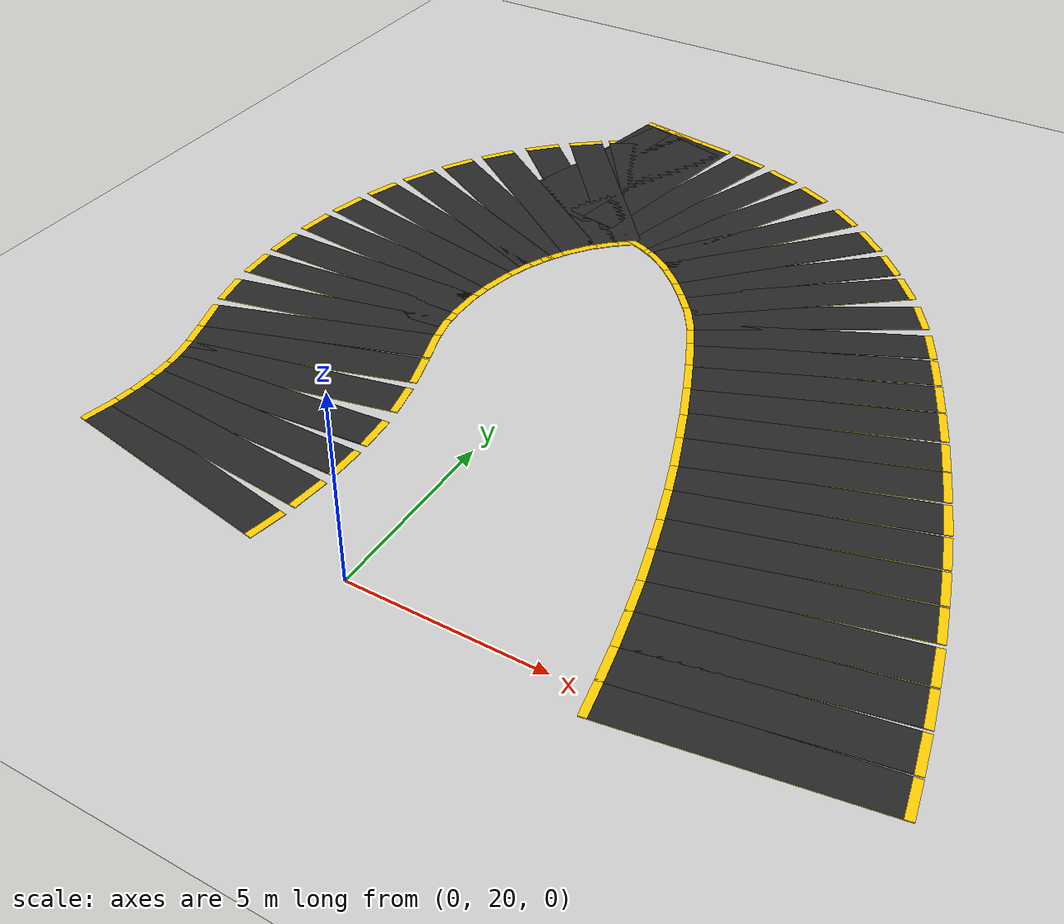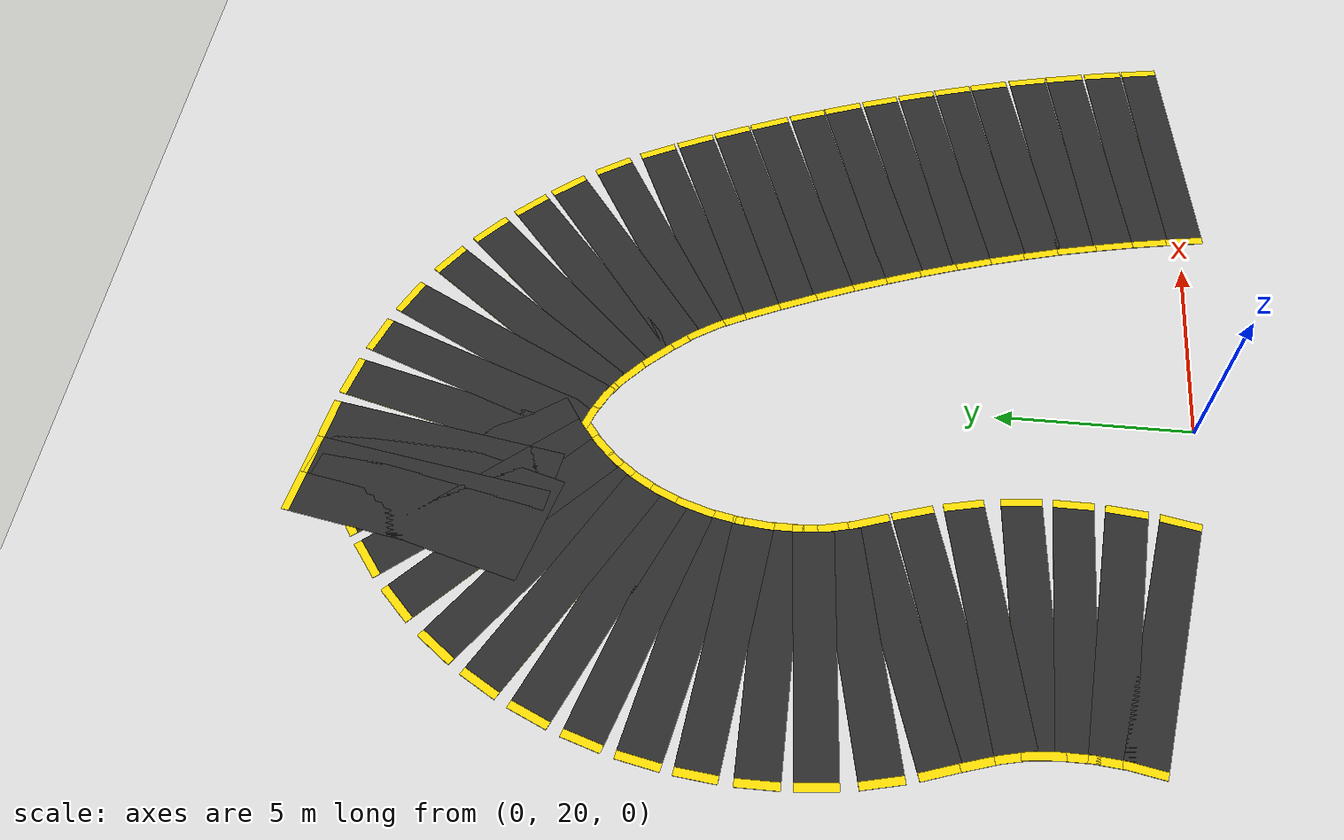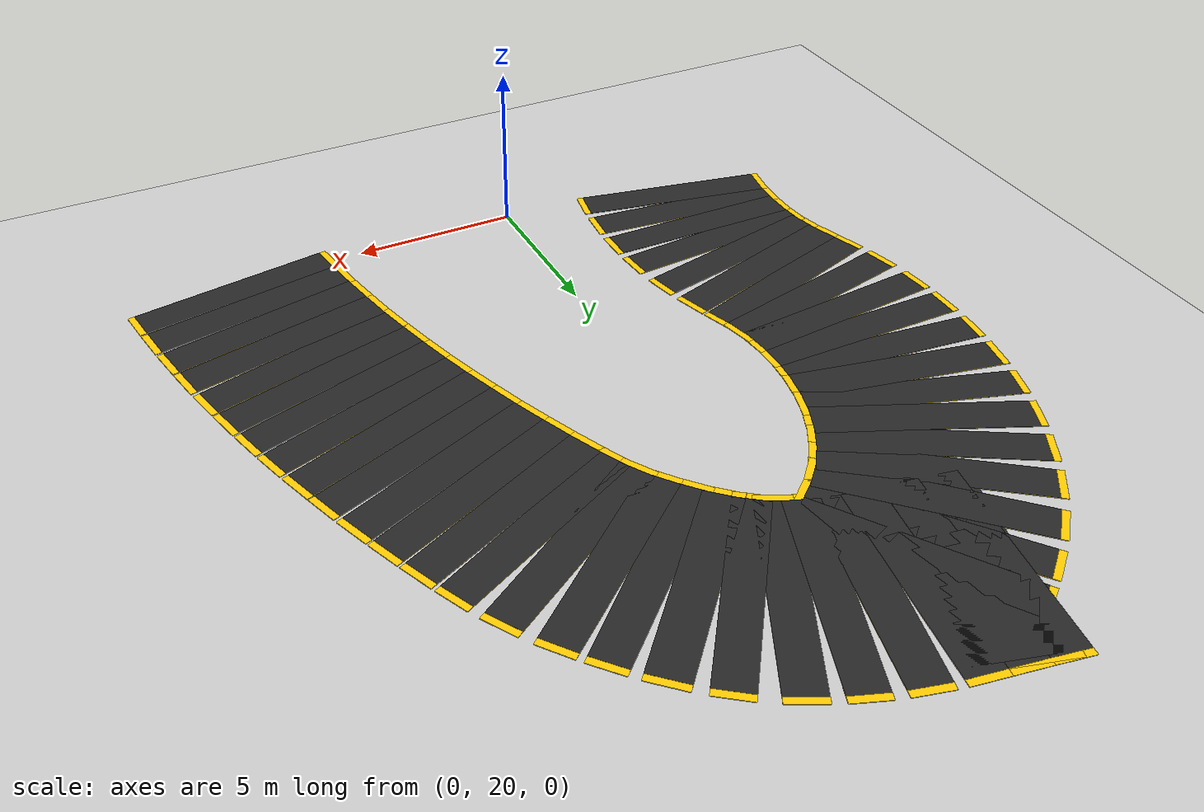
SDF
<sdf version="1.7">
 <world name="custom_road_world">
  <model name="ground_plane">
   <static>true</static>
   <link name="link">
    <collision name="collision">
     <geometry><plane><normal>0 0 1</normal><size>1000 1000</size></plane></geometry>
    </collision>
    <visual name="visual">
     <geometry><plane><normal>0 0 1</normal><size>1000 1000</size></plane></geometry>
     <material>
      <ambient>0.8 0.8 0.8 1</ambient>
      <diffuse>0.8 0.8 0.8 1</diffuse>
      <specular>0.8 0.8 0.8 1</specular>
     </material>
    </visual>
   </link>
  </model>
  <include><uri>https://fuel.ignitionrobotics.org/1.0/openrobotics/models/Sun</uri></include>
  <model name="elliptical_road">
   <static>true</static>
   <link name="seg_0">
    <pose>-4.136 39.092 0.01 0 0 -0.179</pose>
    <visual name="yellow_base_0">
     <pose>0 0 0.001 0 0 0</pose>
     <geometry><box><size>1.060 6.4 0.02</size></box></geometry>
     <material>
      <ambient>1.0 0.8 0.0 1.0</ambient>
      <diffuse>1.0 0.8 0.0 1.0</diffuse>
      <specular>0.1 0.1 0.1 1.0</specular>
     </material>
    </visual>
    <visual name="asphalt_top_0">
     <pose>0 0 0.002 0 0 0</pose>
     <geometry><box><size>1.060 6.0 0.02</size></box></geometry>
     <material>
      <ambient>0.15 0.15 0.15 1.0</ambient>
      <diffuse>0.15 0.15 0.15 1.0</diffuse>
      <specular>0.05 0.05 0.05 1.0</specular>
     </material>
    </visual>
    <visual name="center_line_0">
     <pose>0 0 0.003 0 0 0</pose>
     <geometry><box><size>0.530 0.15 0.001</size></box></geometry>
     <material><ambient>0.9 0.9 0.9 1</ambient><diffuse>0.9 0.9 0.9 1</diffuse></material>
    </visual>
   </link>
   <link name="seg_1">
    <pose>-3.084 38.909 0.01 0 0 -0.166</pose>
    <visual name="yellow_base_1">
     <pose>0 0 0.001 0 0 0</pose>
     <geometry><box><size>1.077 6.4 0.02</size></box></geometry>
     <material>
      <ambient>1.0 0.8 0.0 1.0</ambient>
      <diffuse>1.0 0.8 0.0 1.0</diffuse>
      <specular>0.1 0.1 0.1 1.0</specular>
     </material>
    </visual>
    <visual name="asphalt_top_1">
     <pose>0 0 0.002 0 0 0</pose>
     <geometry><box><size>1.077 6.0 0.02</size></box></geometry>
     <material>
      <ambient>0.15 0.15 0.15 1.0</ambient>
      <diffuse>0.15 0.15 0.15 1.0</diffuse>
      <specular>0.05 0.05 0.05 1.0</specular>
     </material>
    </visual>
    <visual name="center_line_1">
     <pose>0 0 0.003 0 0 0</pose>
     <geometry><box><size>0.538 0.15 0.001</size></box></geometry>
     <material><ambient>0.9 0.9 0.9 1</ambient><diffuse>0.9 0.9 0.9 1</diffuse></material>
    </visual>
   </link>
   <link name="seg_2">
    <pose>-2.030 38.733 0.01 0 0 -0.165</pose>
    <visual name="yellow_base_2">
     <pose>0 0 0.001 0 0 0</pose>
     <geometry><box><size>1.059 6.4 0.02</size></box></geometry>
     <material>
      <ambient>1.0 0.8 0.0 1.0</ambient>
      <diffuse>1.0 0.8 0.0 1.0</diffuse>
      <specular>0.1 0.1 0.1 1.0</specular>
     </material>
    </visual>
    <visual name="asphalt_top_2">
     <pose>0 0 0.002 0 0 0</pose>
     <geometry><box><size>1.059 6.0 0.02</size></box></geometry>
     <material>
      <ambient>0.15 0.15 0.15 1.0</ambient>
      <diffuse>0.15 0.15 0.15 1.0</diffuse>
      <specular>0.05 0.05 0.05 1.0</specular>
     </material>
    </visual>
    <visual name="center_line_2">
     <pose>0 0 0.003 0 0 0</pose>
     <geometry><box><size>0.529 0.15 0.001</size></box></geometry>
     <material><ambient>0.9 0.9 0.9 1</ambient><diffuse>0.9 0.9 0.9 1</diffuse></material>
    </visual>
   </link>
   <link name="seg_3">
    <pose>-0.987 38.514 0.01 0 0 -0.247</pose>
    <visual name="yellow_base_3">
     <pose>0 0 0.001 0 0 0</pose>
     <geometry><box><size>1.075 6.4 0.02</size></box></geometry>
     <material>
      <ambient>1.0 0.8 0.0 1.0</ambient>
      <diffuse>1.0 0.8 0.0 1.0</diffuse>
      <specular>0.1 0.1 0.1 1.0</specular>
     </material>
    </visual>
    <visual name="asphalt_top_3">
     <pose>0 0 0.002 0 0 0</pose>
     <geometry><box><size>1.075 6.0 0.02</size></box></geometry>
     <material>
      <ambient>0.15 0.15 0.15 1.0</ambient>
      <diffuse>0.15 0.15 0.15 1.0</diffuse>
      <specular>0.05 0.05 0.05 1.0</specular>
     </material>
    </visual>
    <visual name="center_line_3">
     <pose>0 0 0.003 0 0 0</pose>
     <geometry><box><size>0.537 0.15 0.001</size></box></geometry>
     <material><ambient>0.9 0.9 0.9 1</ambient><diffuse>0.9 0.9 0.9 1</diffuse></material>
    </visual>
   </link>
   <link name="seg_4">
    <pose>0.007 38.207 0.01 0 0 -0.355</pose>
    <visual name="yellow_base_4">
     <pose>0 0 0.001 0 0 0</pose>
     <geometry><box><size>1.010 6.4 0.02</size></box></geometry>
     <material>
      <ambient>1.0 0.8 0.0 1.0</ambient>
      <diffuse>1.0 0.8 0.0 1.0</diffuse>
      <specular>0.1 0.1 0.1 1.0</specular>
     </material>
    </visual>
    <visual name="asphalt_top_4">
     <pose>0 0 0.002 0 0 0</pose>
     <geometry><box><size>1.010 6.0 0.02</size></box></geometry>
     <material>
      <ambient>0.15 0.15 0.15 1.0</ambient>
      <diffuse>0.15 0.15 0.15 1.0</diffuse>
      <specular>0.05 0.05 0.05 1.0</specular>
     </material>
    </visual>
    <visual name="center_line_4">
     <pose>0 0 0.003 0 0 0</pose>
     <geometry><box><size>0.505 0.15 0.001</size></box></geometry>
     <material><ambient>0.9 0.9 0.9 1</ambient><diffuse>0.9 0.9 0.9 1</diffuse></material>
    </visual>
   </link>
   <link name="seg_5">
    <pose>0.940 37.802 0.01 0 0 -0.464</pose>
    <visual name="yellow_base_5">
     <pose>0 0 0.001 0 0 0</pose>
     <geometry><box><size>1.027 6.4 0.02</size></box></geometry>
     <material>
      <ambient>1.0 0.8 0.0 1.0</ambient>
      <diffuse>1.0 0.8 0.0 1.0</diffuse>
      <specular>0.1 0.1 0.1 1.0</specular>
     </material>
    </visual>
    <visual name="asphalt_top_5">
     <pose>0 0 0.002 0 0 0</pose>
     <geometry><box><size>1.027 6.0 0.02</size></box></geometry>
     <material>
      <ambient>0.15 0.15 0.15 1.0</ambient>
      <diffuse>0.15 0.15 0.15 1.0</diffuse>
      <specular>0.05 0.05 0.05 1.0</specular>
     </material>
    </visual>
    <visual name="center_line_5">
     <pose>0 0 0.003 0 0 0</pose>
     <geometry><box><size>0.514 0.15 0.001</size></box></geometry>
     <material><ambient>0.9 0.9 0.9 1</ambient><diffuse>0.9 0.9 0.9 1</diffuse></material>
    </visual>
   </link>
   <link name="seg_6">
    <pose>1.809 37.273 0.01 0 0 -0.630</pose>
    <visual name="yellow_base_6">
     <pose>0 0 0.001 0 0 0</pose>
     <geometry><box><size>1.013 6.4 0.02</size></box></geometry>
     <material>
      <ambient>1.0 0.8 0.0 1.0</ambient>
      <diffuse>1.0 0.8 0.0 1.0</diffuse>
      <specular>0.1 0.1 0.1 1.0</specular>
     </material>
    </visual>
    <visual name="asphalt_top_6">
     <pose>0 0 0.002 0 0 0</pose>
     <geometry><box><size>1.013 6.0 0.02</size></box></geometry>
     <material>
      <ambient>0.15 0.15 0.15 1.0</ambient>
      <diffuse>0.15 0.15 0.15 1.0</diffuse>
      <specular>0.05 0.05 0.05 1.0</specular>
     </material>
    </visual>
    <visual name="center_line_6">
     <pose>0 0 0.003 0 0 0</pose>
     <geometry><box><size>0.507 0.15 0.001</size></box></geometry>
     <material><ambient>0.9 0.9 0.9 1</ambient><diffuse>0.9 0.9 0.9 1</diffuse></material>
    </visual>
   </link>
   <link name="seg_7">
    <pose>2.620 36.603 0.01 0 0 -0.748</pose>
    <visual name="yellow_base_7">
     <pose>0 0 0.001 0 0 0</pose>
     <geometry><box><size>1.094 6.4 0.02</size></box></geometry>
     <material>
      <ambient>1.0 0.8 0.0 1.0</ambient>
      <diffuse>1.0 0.8 0.0 1.0</diffuse>
      <specular>0.1 0.1 0.1 1.0</specular>
     </material>
    </visual>
    <visual name="asphalt_top_7">
     <pose>0 0 0.002 0 0 0</pose>
     <geometry><box><size>1.094 6.0 0.02</size></box></geometry>
     <material>
      <ambient>0.15 0.15 0.15 1.0</ambient>
      <diffuse>0.15 0.15 0.15 1.0</diffuse>
      <specular>0.05 0.05 0.05 1.0</specular>
     </material>
    </visual>
    <visual name="center_line_7">
     <pose>0 0 0.003 0 0 0</pose>
     <geometry><box><size>0.547 0.15 0.001</size></box></geometry>
     <material><ambient>0.9 0.9 0.9 1</ambient><diffuse>0.9 0.9 0.9 1</diffuse></material>
    </visual>
   </link>
   <link name="seg_8">
    <pose>3.358 35.854 0.01 0 0 -0.841</pose>
    <visual name="yellow_base_8">
     <pose>0 0 0.001 0 0 0</pose>
     <geometry><box><size>1.011 6.4 0.02</size></box></geometry>
     <material>
      <ambient>1.0 0.8 0.0 1.0</ambient>
      <diffuse>1.0 0.8 0.0 1.0</diffuse>
      <specular>0.1 0.1 0.1 1.0</specular>
     </material>
    </visual>
    <visual name="asphalt_top_8">
     <pose>0 0 0.002 0 0 0</pose>
     <geometry><box><size>1.011 6.0 0.02</size></box></geometry>
     <material>
      <ambient>0.15 0.15 0.15 1.0</ambient>
      <diffuse>0.15 0.15 0.15 1.0</diffuse>
      <specular>0.05 0.05 0.05 1.0</specular>
     </material>
    </visual>
    <visual name="center_line_8">
     <pose>0 0 0.003 0 0 0</pose>
     <geometry><box><size>0.506 0.15 0.001</size></box></geometry>
     <material><ambient>0.9 0.9 0.9 1</ambient><diffuse>0.9 0.9 0.9 1</diffuse></material>
    </visual>
   </link>
   <link name="seg_9">
    <pose>4.017 35.072 0.01 0 0 -0.900</pose>
    <visual name="yellow_base_9">
     <pose>0 0 0.001 0 0 0</pose>
     <geometry><box><size>1.035 6.4 0.02</size></box></geometry>
     <material>
      <ambient>1.0 0.8 0.0 1.0</ambient>
      <diffuse>1.0 0.8 0.0 1.0</diffuse>
      <specular>0.1 0.1 0.1 1.0</specular>
     </material>
    </visual>
    <visual name="asphalt_top_9">
     <pose>0 0 0.002 0 0 0</pose>
     <geometry><box><size>1.035 6.0 0.02</size></box></geometry>
     <material>
      <ambient>0.15 0.15 0.15 1.0</ambient>
      <diffuse>0.15 0.15 0.15 1.0</diffuse>
      <specular>0.05 0.05 0.05 1.0</specular>
     </material>
    </visual>
    <visual name="center_line_9">
     <pose>0 0 0.003 0 0 0</pose>
     <geometry><box><size>0.517 0.15 0.001</size></box></geometry>
     <material><ambient>0.9 0.9 0.9 1</ambient><diffuse>0.9 0.9 0.9 1</diffuse></material>
    </visual>
   </link>
   <link name="seg_10">
    <pose>4.613 34.221 0.01 0 0 -1.019</pose>
    <visual name="yellow_base_10">
     <pose>0 0 0.001 0 0 0</pose>
     <geometry><box><size>1.047 6.4 0.02</size></box></geometry>
     <material>
      <ambient>1.0 0.8 0.0 1.0</ambient>
      <diffuse>1.0 0.8 0.0 1.0</diffuse>
      <specular>0.1 0.1 0.1 1.0</specular>
     </material>
    </visual>
    <visual name="asphalt_top_10">
     <pose>0 0 0.002 0 0 0</pose>
     <geometry><box><size>1.047 6.0 0.02</size></box></geometry>
     <material>
      <ambient>0.15 0.15 0.15 1.0</ambient>
      <diffuse>0.15 0.15 0.15 1.0</diffuse>
      <specular>0.05 0.05 0.05 1.0</specular>
     </material>
    </visual>
    <visual name="center_line_10">
     <pose>0 0 0.003 0 0 0</pose>
     <geometry><box><size>0.523 0.15 0.001</size></box></geometry>
     <material><ambient>0.9 0.9 0.9 1</ambient><diffuse>0.9 0.9 0.9 1</diffuse></material>
    </visual>
   </link>
   <link name="seg_11">
    <pose>5.107 33.319 0.01 0 0 -1.123</pose>
    <visual name="yellow_base_11">
     <pose>0 0 0.001 0 0 0</pose>
     <geometry><box><size>1.015 6.4 0.02</size></box></geometry>
     <material>
      <ambient>1.0 0.8 0.0 1.0</ambient>
      <diffuse>1.0 0.8 0.0 1.0</diffuse>
      <specular>0.1 0.1 0.1 1.0</specular>
     </material>
    </visual>
    <visual name="asphalt_top_11">
     <pose>0 0 0.002 0 0 0</pose>
     <geometry><box><size>1.015 6.0 0.02</size></box></geometry>
     <material>
      <ambient>0.15 0.15 0.15 1.0</ambient>
      <diffuse>0.15 0.15 0.15 1.0</diffuse>
      <specular>0.05 0.05 0.05 1.0</specular>
     </material>
    </visual>
    <visual name="center_line_11">
     <pose>0 0 0.003 0 0 0</pose>
     <geometry><box><size>0.507 0.15 0.001</size></box></geometry>
     <material><ambient>0.9 0.9 0.9 1</ambient><diffuse>0.9 0.9 0.9 1</diffuse></material>
    </visual>
   </link>
   <link name="seg_12">
    <pose>5.535 32.388 0.01 0 0 -1.155</pose>
    <visual name="yellow_base_12">
     <pose>0 0 0.001 0 0 0</pose>
     <geometry><box><size>1.035 6.4 0.02</size></box></geometry>
     <material>
      <ambient>1.0 0.8 0.0 1.0</ambient>
      <diffuse>1.0 0.8 0.0 1.0</diffuse>
      <specular>0.1 0.1 0.1 1.0</specular>
     </material>
    </visual>
    <visual name="asphalt_top_12">
     <pose>0 0 0.002 0 0 0</pose>
     <geometry><box><size>1.035 6.0 0.02</size></box></geometry>
     <material>
      <ambient>0.15 0.15 0.15 1.0</ambient>
      <diffuse>0.15 0.15 0.15 1.0</diffuse>
      <specular>0.05 0.05 0.05 1.0</specular>
     </material>
    </visual>
    <visual name="center_line_12">
     <pose>0 0 0.003 0 0 0</pose>
     <geometry><box><size>0.518 0.15 0.001</size></box></geometry>
     <material><ambient>0.9 0.9 0.9 1</ambient><diffuse>0.9 0.9 0.9 1</diffuse></material>
    </visual>
   </link>
   <link name="seg_13">
    <pose>5.941 31.437 0.01 0 0 -1.179</pose>
    <visual name="yellow_base_13">
     <pose>0 0 0.001 0 0 0</pose>
     <geometry><box><size>1.031 6.4 0.02</size></box></geometry>
     <material>
      <ambient>1.0 0.8 0.0 1.0</ambient>
      <diffuse>1.0 0.8 0.0 1.0</diffuse>
      <specular>0.1 0.1 0.1 1.0</specular>
     </material>
    </visual>
    <visual name="asphalt_top_13">
     <pose>0 0 0.002 0 0 0</pose>
     <geometry><box><size>1.031 6.0 0.02</size></box></geometry>
     <material>
      <ambient>0.15 0.15 0.15 1.0</ambient>
      <diffuse>0.15 0.15 0.15 1.0</diffuse>
      <specular>0.05 0.05 0.05 1.0</specular>
     </material>
    </visual>
    <visual name="center_line_13">
     <pose>0 0 0.003 0 0 0</pose>
     <geometry><box><size>0.516 0.15 0.001</size></box></geometry>
     <material><ambient>0.9 0.9 0.9 1</ambient><diffuse>0.9 0.9 0.9 1</diffuse></material>
    </visual>
   </link>
   <link name="seg_14">
    <pose>6.339 30.451 0.01 0 0 -1.196</pose>
    <visual name="yellow_base_14">
     <pose>0 0 0.001 0 0 0</pose>
     <geometry><box><size>1.096 6.4 0.02</size></box></geometry>
     <material>
      <ambient>1.0 0.8 0.0 1.0</ambient>
      <diffuse>1.0 0.8 0.0 1.0</diffuse>
      <specular>0.1 0.1 0.1 1.0</specular>
     </material>
    </visual>
    <visual name="asphalt_top_14">
     <pose>0 0 0.002 0 0 0</pose>
     <geometry><box><size>1.096 6.0 0.02</size></box></geometry>
     <material>
      <ambient>0.15 0.15 0.15 1.0</ambient>
      <diffuse>0.15 0.15 0.15 1.0</diffuse>
      <specular>0.05 0.05 0.05 1.0</specular>
     </material>
    </visual>
    <visual name="center_line_14">
     <pose>0 0 0.003 0 0 0</pose>
     <geometry><box><size>0.548 0.15 0.001</size></box></geometry>
     <material><ambient>0.9 0.9 0.9 1</ambient><diffuse>0.9 0.9 0.9 1</diffuse></material>
    </visual>
   </link>
   <link name="seg_15">
    <pose>6.711 29.463 0.01 0 0 -1.226</pose>
    <visual name="yellow_base_15">
     <pose>0 0 0.001 0 0 0</pose>
     <geometry><box><size>1.014 6.4 0.02</size></box></geometry>
     <material>
      <ambient>1.0 0.8 0.0 1.0</ambient>
      <diffuse>1.0 0.8 0.0 1.0</diffuse>
      <specular>0.1 0.1 0.1 1.0</specular>
     </material>
    </visual>
    <visual name="asphalt_top_15">
     <pose>0 0 0.002 0 0 0</pose>
     <geometry><box><size>1.014 6.0 0.02</size></box></geometry>
     <material>
      <ambient>0.15 0.15 0.15 1.0</ambient>
      <diffuse>0.15 0.15 0.15 1.0</diffuse>
      <specular>0.05 0.05 0.05 1.0</specular>
     </material>
    </visual>
    <visual name="center_line_15">
     <pose>0 0 0.003 0 0 0</pose>
     <geometry><box><size>0.507 0.15 0.001</size></box></geometry>
     <material><ambient>0.9 0.9 0.9 1</ambient><diffuse>0.9 0.9 0.9 1</diffuse></material>
    </visual>
   </link>
   <link name="seg_16">
    <pose>7.058 28.483 0.01 0 0 -1.235</pose>
    <visual name="yellow_base_16">
     <pose>0 0 0.001 0 0 0</pose>
     <geometry><box><size>1.065 6.4 0.02</size></box></geometry>
     <material>
      <ambient>1.0 0.8 0.0 1.0</ambient>
      <diffuse>1.0 0.8 0.0 1.0</diffuse>
      <specular>0.1 0.1 0.1 1.0</specular>
     </material>
    </visual>
    <visual name="asphalt_top_16">
     <pose>0 0 0.002 0 0 0</pose>
     <geometry><box><size>1.065 6.0 0.02</size></box></geometry>
     <material>
      <ambient>0.15 0.15 0.15 1.0</ambient>
      <diffuse>0.15 0.15 0.15 1.0</diffuse>
      <specular>0.05 0.05 0.05 1.0</specular>
     </material>
    </visual>
    <visual name="center_line_16">
     <pose>0 0 0.003 0 0 0</pose>
     <geometry><box><size>0.533 0.15 0.001</size></box></geometry>
     <material><ambient>0.9 0.9 0.9 1</ambient><diffuse>0.9 0.9 0.9 1</diffuse></material>
    </visual>
   </link>
   <link name="seg_17">
    <pose>7.387 27.496 0.01 0 0 -1.263</pose>
    <visual name="yellow_base_17">
     <pose>0 0 0.001 0 0 0</pose>
     <geometry><box><size>1.016 6.4 0.02</size></box></geometry>
     <material>
      <ambient>1.0 0.8 0.0 1.0</ambient>
      <diffuse>1.0 0.8 0.0 1.0</diffuse>
      <specular>0.1 0.1 0.1 1.0</specular>
     </material>
    </visual>
    <visual name="asphalt_top_17">
     <pose>0 0 0.002 0 0 0</pose>
     <geometry><box><size>1.016 6.0 0.02</size></box></geometry>
     <material>
      <ambient>0.15 0.15 0.15 1.0</ambient>
      <diffuse>0.15 0.15 0.15 1.0</diffuse>
      <specular>0.05 0.05 0.05 1.0</specular>
     </material>
    </visual>
    <visual name="center_line_17">
     <pose>0 0 0.003 0 0 0</pose>
     <geometry><box><size>0.508 0.15 0.001</size></box></geometry>
     <material><ambient>0.9 0.9 0.9 1</ambient><diffuse>0.9 0.9 0.9 1</diffuse></material>
    </visual>
   </link>
   <link name="seg_18">
    <pose>7.687 26.514 0.01 0 0 -1.286</pose>
    <visual name="yellow_base_18">
     <pose>0 0 0.001 0 0 0</pose>
     <geometry><box><size>1.036 6.4 0.02</size></box></geometry>
     <material>
      <ambient>1.0 0.8 0.0 1.0</ambient>
      <diffuse>1.0 0.8 0.0 1.0</diffuse>
      <specular>0.1 0.1 0.1 1.0</specular>
     </material>
    </visual>
    <visual name="asphalt_top_18">
     <pose>0 0 0.002 0 0 0</pose>
     <geometry><box><size>1.036 6.0 0.02</size></box></geometry>
     <material>
      <ambient>0.15 0.15 0.15 1.0</ambient>
      <diffuse>0.15 0.15 0.15 1.0</diffuse>
      <specular>0.05 0.05 0.05 1.0</specular>
     </material>
    </visual>
    <visual name="center_line_18">
     <pose>0 0 0.003 0 0 0</pose>
     <geometry><box><size>0.518 0.15 0.001</size></box></geometry>
     <material><ambient>0.9 0.9 0.9 1</ambient><diffuse>0.9 0.9 0.9 1</diffuse></material>
    </visual>
   </link>
   <link name="seg_19">
    <pose>7.968 25.517 0.01 0 0 -1.306</pose>
    <visual name="yellow_base_19">
     <pose>0 0 0.001 0 0 0</pose>
     <geometry><box><size>1.037 6.4 0.02</size></box></geometry>
     <material>
      <ambient>1.0 0.8 0.0 1.0</ambient>
      <diffuse>1.0 0.8 0.0 1.0</diffuse>
      <specular>0.1 0.1 0.1 1.0</specular>
     </material>
    </visual>
    <visual name="asphalt_top_19">
     <pose>0 0 0.002 0 0 0</pose>
     <geometry><box><size>1.037 6.0 0.02</size></box></geometry>
     <material>
      <ambient>0.15 0.15 0.15 1.0</ambient>
      <diffuse>0.15 0.15 0.15 1.0</diffuse>
      <specular>0.05 0.05 0.05 1.0</specular>
     </material>
    </visual>
    <visual name="center_line_19">
     <pose>0 0 0.003 0 0 0</pose>
     <geometry><box><size>0.519 0.15 0.001</size></box></geometry>
     <material><ambient>0.9 0.9 0.9 1</ambient><diffuse>0.9 0.9 0.9 1</diffuse></material>
    </visual>
   </link>
   <link name="seg_20">
    <pose>8.234 24.505 0.01 0 0 -1.322</pose>
    <visual name="yellow_base_20">
     <pose>0 0 0.001 0 0 0</pose>
     <geometry><box><size>1.055 6.4 0.02</size></box></geometry>
     <material>
      <ambient>1.0 0.8 0.0 1.0</ambient>
      <diffuse>1.0 0.8 0.0 1.0</diffuse>
      <specular>0.1 0.1 0.1 1.0</specular>
     </material>
    </visual>
    <visual name="asphalt_top_20">
     <pose>0 0 0.002 0 0 0</pose>
     <geometry><box><size>1.055 6.0 0.02</size></box></geometry>
     <material>
      <ambient>0.15 0.15 0.15 1.0</ambient>
      <diffuse>0.15 0.15 0.15 1.0</diffuse>
      <specular>0.05 0.05 0.05 1.0</specular>
     </material>
    </visual>
    <visual name="center_line_20">
     <pose>0 0 0.003 0 0 0</pose>
     <geometry><box><size>0.527 0.15 0.001</size></box></geometry>
     <material><ambient>0.9 0.9 0.9 1</ambient><diffuse>0.9 0.9 0.9 1</diffuse></material>
    </visual>
   </link>
   <link name="seg_21">
    <pose>8.477 23.471 0.01 0 0 -1.358</pose>
    <visual name="yellow_base_21">
     <pose>0 0 0.001 0 0 0</pose>
     <geometry><box><size>1.070 6.4 0.02</size></box></geometry>
     <material>
      <ambient>1.0 0.8 0.0 1.0</ambient>
      <diffuse>1.0 0.8 0.0 1.0</diffuse>
      <specular>0.1 0.1 0.1 1.0</specular>
     </material>
    </visual>
    <visual name="asphalt_top_21">
     <pose>0 0 0.002 0 0 0</pose>
     <geometry><box><size>1.070 6.0 0.02</size></box></geometry>
     <material>
      <ambient>0.15 0.15 0.15 1.0</ambient>
      <diffuse>0.15 0.15 0.15 1.0</diffuse>
      <specular>0.05 0.05 0.05 1.0</specular>
     </material>
    </visual>
    <visual name="center_line_21">
     <pose>0 0 0.003 0 0 0</pose>
     <geometry><box><size>0.535 0.15 0.001</size></box></geometry>
     <material><ambient>0.9 0.9 0.9 1</ambient><diffuse>0.9 0.9 0.9 1</diffuse></material>
    </visual>
   </link>
   <link name="seg_22">
    <pose>8.695 22.428 0.01 0 0 -1.372</pose>
    <visual name="yellow_base_22">
     <pose>0 0 0.001 0 0 0</pose>
     <geometry><box><size>1.062 6.4 0.02</size></box></geometry>
     <material>
      <ambient>1.0 0.8 0.0 1.0</ambient>
      <diffuse>1.0 0.8 0.0 1.0</diffuse>
      <specular>0.1 0.1 0.1 1.0</specular>
     </material>
    </visual>
    <visual name="asphalt_top_22">
     <pose>0 0 0.002 0 0 0</pose>
     <geometry><box><size>1.062 6.0 0.02</size></box></geometry>
     <material>
      <ambient>0.15 0.15 0.15 1.0</ambient>
      <diffuse>0.15 0.15 0.15 1.0</diffuse>
      <specular>0.05 0.05 0.05 1.0</specular>
     </material>
    </visual>
    <visual name="center_line_22">
     <pose>0 0 0.003 0 0 0</pose>
     <geometry><box><size>0.531 0.15 0.001</size></box></geometry>
     <material><ambient>0.9 0.9 0.9 1</ambient><diffuse>0.9 0.9 0.9 1</diffuse></material>
    </visual>
   </link>
   <link name="seg_23">
    <pose>8.891 21.382 0.01 0 0 -1.399</pose>
    <visual name="yellow_base_23">
     <pose>0 0 0.001 0 0 0</pose>
     <geometry><box><size>1.065 6.4 0.02</size></box></geometry>
     <material>
      <ambient>1.0 0.8 0.0 1.0</ambient>
      <diffuse>1.0 0.8 0.0 1.0</diffuse>
      <specular>0.1 0.1 0.1 1.0</specular>
     </material>
    </visual>
    <visual name="asphalt_top_23">
     <pose>0 0 0.002 0 0 0</pose>
     <geometry><box><size>1.065 6.0 0.02</size></box></geometry>
     <material>
      <ambient>0.15 0.15 0.15 1.0</ambient>
      <diffuse>0.15 0.15 0.15 1.0</diffuse>
      <specular>0.05 0.05 0.05 1.0</specular>
     </material>
    </visual>
    <visual name="center_line_23">
     <pose>0 0 0.003 0 0 0</pose>
     <geometry><box><size>0.532 0.15 0.001</size></box></geometry>
     <material><ambient>0.9 0.9 0.9 1</ambient><diffuse>0.9 0.9 0.9 1</diffuse></material>
    </visual>
   </link>
   <link name="seg_24">
    <pose>9.060 20.363 0.01 0 0 -1.415</pose>
    <visual name="yellow_base_24">
     <pose>0 0 0.001 0 0 0</pose>
     <geometry><box><size>1.002 6.4 0.02</size></box></geometry>
     <material>
      <ambient>1.0 0.8 0.0 1.0</ambient>
      <diffuse>1.0 0.8 0.0 1.0</diffuse>
      <specular>0.1 0.1 0.1 1.0</specular>
     </material>
    </visual>
    <visual name="asphalt_top_24">
     <pose>0 0 0.002 0 0 0</pose>
     <geometry><box><size>1.002 6.0 0.02</size></box></geometry>
     <material>
      <ambient>0.15 0.15 0.15 1.0</ambient>
      <diffuse>0.15 0.15 0.15 1.0</diffuse>
      <specular>0.05 0.05 0.05 1.0</specular>
     </material>
    </visual>
    <visual name="center_line_24">
     <pose>0 0 0.003 0 0 0</pose>
     <geometry><box><size>0.501 0.15 0.001</size></box></geometry>
     <material><ambient>0.9 0.9 0.9 1</ambient><diffuse>0.9 0.9 0.9 1</diffuse></material>
    </visual>
   </link>
   <link name="seg_70">
    <pose>-5.604 21.069 0.01 0 0 1.385</pose>
    <visual name="yellow_base_70">
     <pose>0 0 0.001 0 0 0</pose>
     <geometry><box><size>1.018 6.4 0.02</size></box></geometry>
     <material>
      <ambient>1.0 0.8 0.0 1.0</ambient>
      <diffuse>1.0 0.8 0.0 1.0</diffuse>
      <specular>0.1 0.1 0.1 1.0</specular>
     </material>
    </visual>
    <visual name="asphalt_top_70">
     <pose>0 0 0.002 0 0 0</pose>
     <geometry><box><size>1.018 6.0 0.02</size></box></geometry>
     <material>
      <ambient>0.15 0.15 0.15 1.0</ambient>
      <diffuse>0.15 0.15 0.15 1.0</diffuse>
      <specular>0.05 0.05 0.05 1.0</specular>
     </material>
    </visual>
    <visual name="center_line_70">
     <pose>0 0 0.003 0 0 0</pose>
     <geometry><box><size>0.509 0.15 0.001</size></box></geometry>
     <material><ambient>0.9 0.9 0.9 1</ambient><diffuse>0.9 0.9 0.9 1</diffuse></material>
    </visual>
   </link>
   <link name="seg_71">
    <pose>-5.460 22.087 0.01 0 0 1.474</pose>
    <visual name="yellow_base_71">
     <pose>0 0 0.001 0 0 0</pose>
     <geometry><box><size>1.042 6.4 0.02</size></box></geometry>
     <material>
      <ambient>1.0 0.8 0.0 1.0</ambient>
      <diffuse>1.0 0.8 0.0 1.0</diffuse>
      <specular>0.1 0.1 0.1 1.0</specular>
     </material>
    </visual>
    <visual name="asphalt_top_71">
     <pose>0 0 0.002 0 0 0</pose>
     <geometry><box><size>1.042 6.0 0.02</size></box></geometry>
     <material>
      <ambient>0.15 0.15 0.15 1.0</ambient>
      <diffuse>0.15 0.15 0.15 1.0</diffuse>
      <specular>0.05 0.05 0.05 1.0</specular>
     </material>
    </visual>
    <visual name="center_line_71">
     <pose>0 0 0.003 0 0 0</pose>
     <geometry><box><size>0.521 0.15 0.001</size></box></geometry>
     <material><ambient>0.9 0.9 0.9 1</ambient><diffuse>0.9 0.9 0.9 1</diffuse></material>
    </visual>
   </link>
   <link name="seg_72">
    <pose>-5.406 23.107 0.01 0 0 1.563</pose>
    <visual name="yellow_base_72">
     <pose>0 0 0.001 0 0 0</pose>
     <geometry><box><size>1.003 6.4 0.02</size></box></geometry>
     <material>
      <ambient>1.0 0.8 0.0 1.0</ambient>
      <diffuse>1.0 0.8 0.0 1.0</diffuse>
      <specular>0.1 0.1 0.1 1.0</specular>
     </material>
    </visual>
    <visual name="asphalt_top_72">
     <pose>0 0 0.002 0 0 0</pose>
     <geometry><box><size>1.003 6.0 0.02</size></box></geometry>
     <material>
      <ambient>0.15 0.15 0.15 1.0</ambient>
      <diffuse>0.15 0.15 0.15 1.0</diffuse>
      <specular>0.05 0.05 0.05 1.0</specular>
     </material>
    </visual>
    <visual name="center_line_72">
     <pose>0 0 0.003 0 0 0</pose>
     <geometry><box><size>0.501 0.15 0.001</size></box></geometry>
     <material><ambient>0.9 0.9 0.9 1</ambient><diffuse>0.9 0.9 0.9 1</diffuse></material>
    </visual>
   </link>
   <link name="seg_73">
    <pose>-5.440 24.114 0.01 0 0 1.647</pose>
    <visual name="yellow_base_73">
     <pose>0 0 0.001 0 0 0</pose>
     <geometry><box><size>1.014 6.4 0.02</size></box></geometry>
     <material>
      <ambient>1.0 0.8 0.0 1.0</ambient>
      <diffuse>1.0 0.8 0.0 1.0</diffuse>
      <specular>0.1 0.1 0.1 1.0</specular>
     </material>
    </visual>
    <visual name="asphalt_top_73">
     <pose>0 0 0.002 0 0 0</pose>
     <geometry><box><size>1.014 6.0 0.02</size></box></geometry>
     <material>
      <ambient>0.15 0.15 0.15 1.0</ambient>
      <diffuse>0.15 0.15 0.15 1.0</diffuse>
      <specular>0.05 0.05 0.05 1.0</specular>
     </material>
    </visual>
    <visual name="center_line_73">
     <pose>0 0 0.003 0 0 0</pose>
     <geometry><box><size>0.507 0.15 0.001</size></box></geometry>
     <material><ambient>0.9 0.9 0.9 1</ambient><diffuse>0.9 0.9 0.9 1</diffuse></material>
    </visual>
   </link>
   <link name="seg_74">
    <pose>-5.582 25.109 0.01 0 0 1.779</pose>
    <visual name="yellow_base_74">
     <pose>0 0 0.001 0 0 0</pose>
     <geometry><box><size>1.001 6.4 0.02</size></box></geometry>
     <material>
      <ambient>1.0 0.8 0.0 1.0</ambient>
      <diffuse>1.0 0.8 0.0 1.0</diffuse>
      <specular>0.1 0.1 0.1 1.0</specular>
     </material>
    </visual>
    <visual name="asphalt_top_74">
     <pose>0 0 0.002 0 0 0</pose>
     <geometry><box><size>1.001 6.0 0.02</size></box></geometry>
     <material>
      <ambient>0.15 0.15 0.15 1.0</ambient>
      <diffuse>0.15 0.15 0.15 1.0</diffuse>
      <specular>0.05 0.05 0.05 1.0</specular>
     </material>
    </visual>
    <visual name="center_line_74">
     <pose>0 0 0.003 0 0 0</pose>
     <geometry><box><size>0.501 0.15 0.001</size></box></geometry>
     <material><ambient>0.9 0.9 0.9 1</ambient><diffuse>0.9 0.9 0.9 1</diffuse></material>
    </visual>
   </link>
   <link name="seg_75">
    <pose>-5.834 26.097 0.01 0 0 1.860</pose>
    <visual name="yellow_base_75">
     <pose>0 0 0.001 0 0 0</pose>
     <geometry><box><size>1.040 6.4 0.02</size></box></geometry>
     <material>
      <ambient>1.0 0.8 0.0 1.0</ambient>
      <diffuse>1.0 0.8 0.0 1.0</diffuse>
      <specular>0.1 0.1 0.1 1.0</specular>
     </material>
    </visual>
    <visual name="asphalt_top_75">
     <pose>0 0 0.002 0 0 0</pose>
     <geometry><box><size>1.040 6.0 0.02</size></box></geometry>
     <material>
      <ambient>0.15 0.15 0.15 1.0</ambient>
      <diffuse>0.15 0.15 0.15 1.0</diffuse>
      <specular>0.05 0.05 0.05 1.0</specular>
     </material>
    </visual>
    <visual name="center_line_75">
     <pose>0 0 0.003 0 0 0</pose>
     <geometry><box><size>0.520 0.15 0.001</size></box></geometry>
     <material><ambient>0.9 0.9 0.9 1</ambient><diffuse>0.9 0.9 0.9 1</diffuse></material>
    </visual>
   </link>
   <link name="seg_76">
    <pose>-6.139 27.083 0.01 0 0 1.883</pose>
    <visual name="yellow_base_76">
     <pose>0 0 0.001 0 0 0</pose>
     <geometry><box><size>1.024 6.4 0.02</size></box></geometry>
     <material>
      <ambient>1.0 0.8 0.0 1.0</ambient>
      <diffuse>1.0 0.8 0.0 1.0</diffuse>
      <specular>0.1 0.1 0.1 1.0</specular>
     </material>
    </visual>
    <visual name="asphalt_top_76">
     <pose>0 0 0.002 0 0 0</pose>
     <geometry><box><size>1.024 6.0 0.02</size></box></geometry>
     <material>
      <ambient>0.15 0.15 0.15 1.0</ambient>
      <diffuse>0.15 0.15 0.15 1.0</diffuse>
      <specular>0.05 0.05 0.05 1.0</specular>
     </material>
    </visual>
    <visual name="center_line_76">
     <pose>0 0 0.003 0 0 0</pose>
     <geometry><box><size>0.512 0.15 0.001</size></box></geometry>
     <material><ambient>0.9 0.9 0.9 1</ambient><diffuse>0.9 0.9 0.9 1</diffuse></material>
    </visual>
   </link>
   <link name="seg_77">
    <pose>-6.409 28.080 0.01 0 0 1.788</pose>
    <visual name="yellow_base_77">
     <pose>0 0 0.001 0 0 0</pose>
     <geometry><box><size>1.045 6.4 0.02</size></box></geometry>
     <material>
      <ambient>1.0 0.8 0.0 1.0</ambient>
      <diffuse>1.0 0.8 0.0 1.0</diffuse>
      <specular>0.1 0.1 0.1 1.0</specular>
     </material>
    </visual>
    <visual name="asphalt_top_77">
     <pose>0 0 0.002 0 0 0</pose>
     <geometry><box><size>1.045 6.0 0.02</size></box></geometry>
     <material>
      <ambient>0.15 0.15 0.15 1.0</ambient>
      <diffuse>0.15 0.15 0.15 1.0</diffuse>
      <specular>0.05 0.05 0.05 1.0</specular>
     </material>
    </visual>
    <visual name="center_line_77">
     <pose>0 0 0.003 0 0 0</pose>
     <geometry><box><size>0.522 0.15 0.001</size></box></geometry>
     <material><ambient>0.9 0.9 0.9 1</ambient><diffuse>0.9 0.9 0.9 1</diffuse></material>
    </visual>
   </link>
   <link name="seg_78">
    <pose>-6.566 29.095 0.01 0 0 1.657</pose>
    <visual name="yellow_base_78">
     <pose>0 0 0.001 0 0 0</pose>
     <geometry><box><size>1.014 6.4 0.02</size></box></geometry>
     <material>
      <ambient>1.0 0.8 0.0 1.0</ambient>
      <diffuse>1.0 0.8 0.0 1.0</diffuse>
      <specular>0.1 0.1 0.1 1.0</specular>
     </material>
    </visual>
    <visual name="asphalt_top_78">
     <pose>0 0 0.002 0 0 0</pose>
     <geometry><box><size>1.014 6.0 0.02</size></box></geometry>
     <material>
      <ambient>0.15 0.15 0.15 1.0</ambient>
      <diffuse>0.15 0.15 0.15 1.0</diffuse>
      <specular>0.05 0.05 0.05 1.0</specular>
     </material>
    </visual>
    <visual name="center_line_78">
     <pose>0 0 0.003 0 0 0</pose>
     <geometry><box><size>0.507 0.15 0.001</size></box></geometry>
     <material><ambient>0.9 0.9 0.9 1</ambient><diffuse>0.9 0.9 0.9 1</diffuse></material>
    </visual>
   </link>
   <link name="seg_79">
    <pose>-6.608 30.122 0.01 0 0 1.568</pose>
    <visual name="yellow_base_79">
     <pose>0 0 0.001 0 0 0</pose>
     <geometry><box><size>1.043 6.4 0.02</size></box></geometry>
     <material>
      <ambient>1.0 0.8 0.0 1.0</ambient>
      <diffuse>1.0 0.8 0.0 1.0</diffuse>
      <specular>0.1 0.1 0.1 1.0</specular>
     </material>
    </visual>
    <visual name="asphalt_top_79">
     <pose>0 0 0.002 0 0 0</pose>
     <geometry><box><size>1.043 6.0 0.02</size></box></geometry>
     <material>
      <ambient>0.15 0.15 0.15 1.0</ambient>
      <diffuse>0.15 0.15 0.15 1.0</diffuse>
      <specular>0.05 0.05 0.05 1.0</specular>
     </material>
    </visual>
    <visual name="center_line_79">
     <pose>0 0 0.003 0 0 0</pose>
     <geometry><box><size>0.521 0.15 0.001</size></box></geometry>
     <material><ambient>0.9 0.9 0.9 1</ambient><diffuse>0.9 0.9 0.9 1</diffuse></material>
    </visual>
   </link>
   <link name="seg_80">
    <pose>-6.551 31.151 0.01 0 0 1.461</pose>
    <visual name="yellow_base_80">
     <pose>0 0 0.001 0 0 0</pose>
     <geometry><box><size>1.021 6.4 0.02</size></box></geometry>
     <material>
      <ambient>1.0 0.8 0.0 1.0</ambient>
      <diffuse>1.0 0.8 0.0 1.0</diffuse>
      <specular>0.1 0.1 0.1 1.0</specular>
     </material>
    </visual>
    <visual name="asphalt_top_80">
     <pose>0 0 0.002 0 0 0</pose>
     <geometry><box><size>1.021 6.0 0.02</size></box></geometry>
     <material>
      <ambient>0.15 0.15 0.15 1.0</ambient>
      <diffuse>0.15 0.15 0.15 1.0</diffuse>
      <specular>0.05 0.05 0.05 1.0</specular>
     </material>
    </visual>
    <visual name="center_line_80">
     <pose>0 0 0.003 0 0 0</pose>
     <geometry><box><size>0.511 0.15 0.001</size></box></geometry>
     <material><ambient>0.9 0.9 0.9 1</ambient><diffuse>0.9 0.9 0.9 1</diffuse></material>
    </visual>
   </link>
   <link name="seg_81">
    <pose>-6.389 32.184 0.01 0 0 1.371</pose>
    <visual name="yellow_base_81">
     <pose>0 0 0.001 0 0 0</pose>
     <geometry><box><size>1.072 6.4 0.02</size></box></geometry>
     <material>
      <ambient>1.0 0.8 0.0 1.0</ambient>
      <diffuse>1.0 0.8 0.0 1.0</diffuse>
      <specular>0.1 0.1 0.1 1.0</specular>
     </material>
    </visual>
    <visual name="asphalt_top_81">
     <pose>0 0 0.002 0 0 0</pose>
     <geometry><box><size>1.072 6.0 0.02</size></box></geometry>
     <material>
      <ambient>0.15 0.15 0.15 1.0</ambient>
      <diffuse>0.15 0.15 0.15 1.0</diffuse>
      <specular>0.05 0.05 0.05 1.0</specular>
     </material>
    </visual>
    <visual name="center_line_81">
     <pose>0 0 0.003 0 0 0</pose>
     <geometry><box><size>0.536 0.15 0.001</size></box></geometry>
     <material><ambient>0.9 0.9 0.9 1</ambient><diffuse>0.9 0.9 0.9 1</diffuse></material>
    </visual>
   </link>
   <link name="seg_82">
    <pose>-6.133 33.189 0.01 0 0 1.269</pose>
    <visual name="yellow_base_82">
     <pose>0 0 0.001 0 0 0</pose>
     <geometry><box><size>1.006 6.4 0.02</size></box></geometry>
     <material>
      <ambient>1.0 0.8 0.0 1.0</ambient>
      <diffuse>1.0 0.8 0.0 1.0</diffuse>
      <specular>0.1 0.1 0.1 1.0</specular>
     </material>
    </visual>
    <visual name="asphalt_top_82">
     <pose>0 0 0.002 0 0 0</pose>
     <geometry><box><size>1.006 6.0 0.02</size></box></geometry>
     <material>
      <ambient>0.15 0.15 0.15 1.0</ambient>
      <diffuse>0.15 0.15 0.15 1.0</diffuse>
      <specular>0.05 0.05 0.05 1.0</specular>
     </material>
    </visual>
    <visual name="center_line_82">
     <pose>0 0 0.003 0 0 0</pose>
     <geometry><box><size>0.503 0.15 0.001</size></box></geometry>
     <material><ambient>0.9 0.9 0.9 1</ambient><diffuse>0.9 0.9 0.9 1</diffuse></material>
    </visual>
   </link>
   <link name="seg_83">
    <pose>-5.772 34.156 0.01 0 0 1.161</pose>
    <visual name="yellow_base_83">
     <pose>0 0 0.001 0 0 0</pose>
     <geometry><box><size>1.061 6.4 0.02</size></box></geometry>
     <material>
      <ambient>1.0 0.8 0.0 1.0</ambient>
      <diffuse>1.0 0.8 0.0 1.0</diffuse>
      <specular>0.1 0.1 0.1 1.0</specular>
     </material>
    </visual>
    <visual name="asphalt_top_83">
     <pose>0 0 0.002 0 0 0</pose>
     <geometry><box><size>1.061 6.0 0.02</size></box></geometry>
     <material>
      <ambient>0.15 0.15 0.15 1.0</ambient>
      <diffuse>0.15 0.15 0.15 1.0</diffuse>
      <specular>0.05 0.05 0.05 1.0</specular>
     </material>
    </visual>
    <visual name="center_line_83">
     <pose>0 0 0.003 0 0 0</pose>
     <geometry><box><size>0.530 0.15 0.001</size></box></geometry>
     <material><ambient>0.9 0.9 0.9 1</ambient><diffuse>0.9 0.9 0.9 1</diffuse></material>
    </visual>
   </link>
   <link name="seg_84">
    <pose>-5.303 35.095 0.01 0 0 1.052</pose>
    <visual name="yellow_base_84">
     <pose>0 0 0.001 0 0 0</pose>
     <geometry><box><size>1.042 6.4 0.02</size></box></geometry>
     <material>
      <ambient>1.0 0.8 0.0 1.0</ambient>
      <diffuse>1.0 0.8 0.0 1.0</diffuse>
      <specular>0.1 0.1 0.1 1.0</specular>
     </material>
    </visual>
    <visual name="asphalt_top_84">
     <pose>0 0 0.002 0 0 0</pose>
     <geometry><box><size>1.042 6.0 0.02</size></box></geometry>
     <material>
      <ambient>0.15 0.15 0.15 1.0</ambient>
      <diffuse>0.15 0.15 0.15 1.0</diffuse>
      <specular>0.05 0.05 0.05 1.0</specular>
     </material>
    </visual>
    <visual name="center_line_84">
     <pose>0 0 0.003 0 0 0</pose>
     <geometry><box><size>0.521 0.15 0.001</size></box></geometry>
     <material><ambient>0.9 0.9 0.9 1</ambient><diffuse>0.9 0.9 0.9 1</diffuse></material>
    </visual>
   </link>
   <link name="seg_85">
    <pose>-4.730 35.978 0.01 0 0 0.940</pose>
    <visual name="yellow_base_85">
     <pose>0 0 0.001 0 0 0</pose>
     <geometry><box><size>1.066 6.4 0.02</size></box></geometry>
     <material>
      <ambient>1.0 0.8 0.0 1.0</ambient>
      <diffuse>1.0 0.8 0.0 1.0</diffuse>
      <specular>0.1 0.1 0.1 1.0</specular>
     </material>
    </visual>
    <visual name="asphalt_top_85">
     <pose>0 0 0.002 0 0 0</pose>
     <geometry><box><size>1.066 6.0 0.02</size></box></geometry>
     <material>
      <ambient>0.15 0.15 0.15 1.0</ambient>
      <diffuse>0.15 0.15 0.15 1.0</diffuse>
      <specular>0.05 0.05 0.05 1.0</specular>
     </material>
    </visual>
    <visual name="center_line_85">
     <pose>0 0 0.003 0 0 0</pose>
     <geometry><box><size>0.533 0.15 0.001</size></box></geometry>
     <material><ambient>0.9 0.9 0.9 1</ambient><diffuse>0.9 0.9 0.9 1</diffuse></material>
    </visual>
   </link>
   <link name="seg_86">
    <pose>-4.043 36.793 0.01 0 0 0.801</pose>
    <visual name="yellow_base_86">
     <pose>0 0 0.001 0 0 0</pose>
     <geometry><box><size>1.072 6.4 0.02</size></box></geometry>
     <material>
      <ambient>1.0 0.8 0.0 1.0</ambient>
      <diffuse>1.0 0.8 0.0 1.0</diffuse>
      <specular>0.1 0.1 0.1 1.0</specular>
     </material>
    </visual>
    <visual name="asphalt_top_86">
     <pose>0 0 0.002 0 0 0</pose>
     <geometry><box><size>1.072 6.0 0.02</size></box></geometry>
     <material>
      <ambient>0.15 0.15 0.15 1.0</ambient>
      <diffuse>0.15 0.15 0.15 1.0</diffuse>
      <specular>0.05 0.05 0.05 1.0</specular>
     </material>
    </visual>
    <visual name="center_line_86">
     <pose>0 0 0.003 0 0 0</pose>
     <geometry><box><size>0.536 0.15 0.001</size></box></geometry>
     <material><ambient>0.9 0.9 0.9 1</ambient><diffuse>0.9 0.9 0.9 1</diffuse></material>
    </visual>
   </link>
   <link name="seg_87">
    <pose>-3.265 37.506 0.01 0 0 0.681</pose>
    <visual name="yellow_base_87">
     <pose>0 0 0.001 0 0 0</pose>
     <geometry><box><size>1.043 6.4 0.02</size></box></geometry>
     <material>
      <ambient>1.0 0.8 0.0 1.0</ambient>
      <diffuse>1.0 0.8 0.0 1.0</diffuse>
      <specular>0.1 0.1 0.1 1.0</specular>
     </material>
    </visual>
    <visual name="asphalt_top_87">
     <pose>0 0 0.002 0 0 0</pose>
     <geometry><box><size>1.043 6.0 0.02</size></box></geometry>
     <material>
      <ambient>0.15 0.15 0.15 1.0</ambient>
      <diffuse>0.15 0.15 0.15 1.0</diffuse>
      <specular>0.05 0.05 0.05 1.0</specular>
     </material>
    </visual>
    <visual name="center_line_87">
     <pose>0 0 0.003 0 0 0</pose>
     <geometry><box><size>0.522 0.15 0.001</size></box></geometry>
     <material><ambient>0.9 0.9 0.9 1</ambient><diffuse>0.9 0.9 0.9 1</diffuse></material>
    </visual>
   </link>
   <link name="seg_88">
    <pose>-2.418 38.138 0.01 0 0 0.603</pose>
    <visual name="yellow_base_88">
     <pose>0 0 0.001 0 0 0</pose>
     <geometry><box><size>1.070 6.4 0.02</size></box></geometry>
     <material>
      <ambient>1.0 0.8 0.0 1.0</ambient>
      <diffuse>1.0 0.8 0.0 1.0</diffuse>
      <specular>0.1 0.1 0.1 1.0</specular>
     </material>
    </visual>
    <visual name="asphalt_top_88">
     <pose>0 0 0.002 0 0 0</pose>
     <geometry><box><size>1.070 6.0 0.02</size></box></geometry>
     <material>
      <ambient>0.15 0.15 0.15 1.0</ambient>
      <diffuse>0.15 0.15 0.15 1.0</diffuse>
      <specular>0.05 0.05 0.05 1.0</specular>
     </material>
    </visual>
    <visual name="center_line_88">
     <pose>0 0 0.003 0 0 0</pose>
     <geometry><box><size>0.535 0.15 0.001</size></box></geometry>
     <material><ambient>0.9 0.9 0.9 1</ambient><diffuse>0.9 0.9 0.9 1</diffuse></material>
    </visual>
   </link>
   <link name="seg_89">
    <pose>-3.317 38.814 0.01 0 0 2.871</pose>
    <visual name="yellow_base_89">
     <pose>0 0 0.001 0 0 0</pose>
     <geometry><box><size>2.781 6.4 0.02</size></box></geometry>
     <material>
      <ambient>1.0 0.8 0.0 1.0</ambient>
      <diffuse>1.0 0.8 0.0 1.0</diffuse>
      <specular>0.1 0.1 0.1 1.0</specular>
     </material>
    </visual>
    <visual name="asphalt_top_89">
     <pose>0 0 0.002 0 0 0</pose>
     <geometry><box><size>2.781 6.0 0.02</size></box></geometry>
     <material>
      <ambient>0.15 0.15 0.15 1.0</ambient>
      <diffuse>0.15 0.15 0.15 1.0</diffuse>
      <specular>0.05 0.05 0.05 1.0</specular>
     </material>
    </visual>
    <visual name="center_line_89">
     <pose>0 0 0.003 0 0 0</pose>
     <geometry><box><size>1.000 0.15 0.001</size></box></geometry>
     <material><ambient>0.9 0.9 0.9 1</ambient><diffuse>0.9 0.9 0.9 1</diffuse></material>
    </visual>
   </link>
  </model>
 </world>
</sdf>
